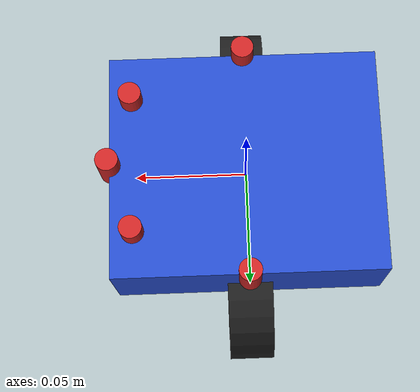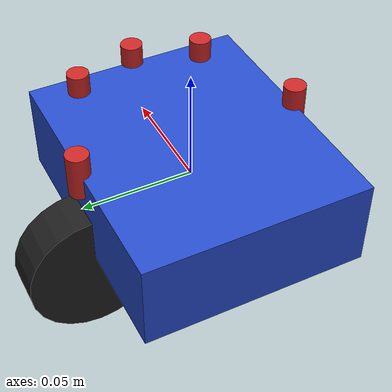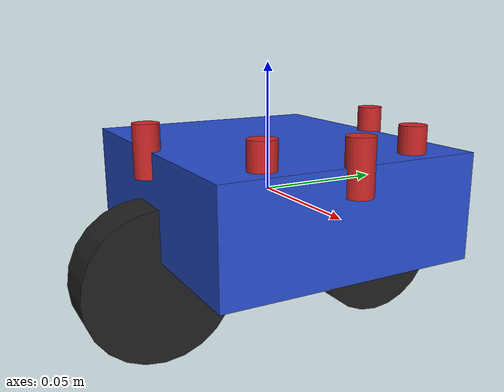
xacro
<?xml version="1.0"?>
<robot xmlns:xacro="http://www.ros.org/wiki/xacro" name="micromouse">

  <!-- ========= Parameters ========= -->
  <xacro:property name="wheel_radius" value="0.03"/>
  <xacro:property name="wheel_separation" value="0.08"/> <!-- distance between left & right wheels -->
  <xacro:property name="wheel_length" value="0.02"/>
  <xacro:property name="robot_length" value="0.12"/>
  <xacro:property name="robot_width" value="0.10"/>
  <xacro:property name="sensor_range" value="0.10"/>

  <!-- ========= Base Link ========= -->
  <link name="base_link">
    <visual>
      <geometry>
        <box size="${robot_length} ${robot_width} 0.04"/>
      </geometry>
      <material name="Blue"/>
    </visual>
    <collision>
      <geometry>
        <box size="${robot_length} ${robot_width} 0.04"/>
      </geometry>
    </collision>
    <inertial>
      <mass value="0.5"/>
      <inertia ixx="0.001" ixy="0.0" ixz="0.0"
               iyy="0.001" iyz="0.0"
               izz="0.001"/>
    </inertial>
  </link>

  <!-- ========= Wheel Macro ========= -->
  <xacro:macro name="wheel" params="name x y z">
    <link name="${name}">
      <visual>
        <origin rpy="0 1.5708 0"/>
        <geometry>
          <cylinder radius="${wheel_radius}" length="${wheel_length}"/>
        </geometry>
        <material name="Black"/>
      </visual>
      <collision>
        <geometry>
          <cylinder radius="${wheel_radius}" length="${wheel_length}"/>
        </geometry>
      </collision>
      <inertial>
        <mass value="0.05"/>
        <inertia ixx="0.0001" ixy="0.0" ixz="0.0"
                 iyy="0.0001" iyz="0.0"
                 izz="0.0001"/>
      </inertial>
    </link>

    <joint name="${name}_joint" type="continuous">
      <parent link="base_link"/>
      <child link="${name}"/>
      <origin xyz="${x} ${y} ${z}" rpy="0 0 0"/>
      <axis xyz="1 0 0"/>
    </joint>
  </xacro:macro>
<!-- Left Wheel -->
<xacro:wheel name="wheel_left"
             x="0"
             y="${wheel_separation/2 + wheel_length/2}"
             z="-${wheel_radius}" />

<!-- Right Wheel -->
<xacro:wheel name="wheel_right"
             x="0"
             y="-${wheel_separation/2 + wheel_length/2}"
             z="-${wheel_radius}" />

  <!-- ========= IR Sensor Macro ========= -->
  <xacro:macro name="ir_sensor" params="name x y yaw">
    <link name="${name}">
      <visual>
        <geometry>
          <cylinder radius="0.005" length="0.02"/>
        </geometry>
        <material name="Red"/>
      </visual>
      <collision>
        <geometry>
          <cylinder radius="0.005" length="0.02"/>
        </geometry>
      </collision>
      <inertial>
        <mass value="0.001"/>
        <inertia ixx="1e-6" ixy="0" ixz="0"
                 iyy="1e-6" iyz="0"
                 izz="1e-6"/>
      </inertial>
    </link>

    <joint name="${name}_joint" type="fixed">
      <parent link="base_link"/>
      <child link="${name}"/>
      <origin xyz="${x} ${y} 0.02" rpy="0 0 ${yaw}"/>
    </joint>
  </xacro:macro>

  <!-- Front Sensors -->
  <xacro:ir_sensor name="ir_front" x="0.06" y="0" yaw="0"/>
  <xacro:ir_sensor name="ir_front_left" x="0.05" y="0.03" yaw="0.785"/> <!-- 45 deg -->
  <xacro:ir_sensor name="ir_front_right" x="0.05" y="-0.03" yaw="-0.785"/> <!-- -45 deg -->
  <!-- Side Sensors -->
  <xacro:ir_sensor name="ir_left" x="0" y="0.05" yaw="1.57"/> <!-- 90 deg -->
  <xacro:ir_sensor name="ir_right" x="0" y="-0.05" yaw="-1.57"/> <!-- -90 deg -->

  <!-- ========= Gazebo Diff Drive Plugin ========= -->
  <gazebo>
    <plugin name="diff_drive_controller" filename="libgazebo_ros_diff_drive.so">
      <ros>
        <namespace>/</namespace>
        <remapping>cmd_vel:=/cmd_vel</remapping>
      </ros>
      <updateRate>100.0</updateRate>
      <wheelSeparation>${wheel_separation}</wheelSeparation>
      <wheelDiameter>${wheel_radius*2}</wheelDiameter>
      <leftJoint>wheel_left_joint</leftJoint>
      <rightJoint>wheel_right_joint</rightJoint>
      <robotBaseFrame>base_link</robotBaseFrame>
    </plugin>
  </gazebo>

</robot>
